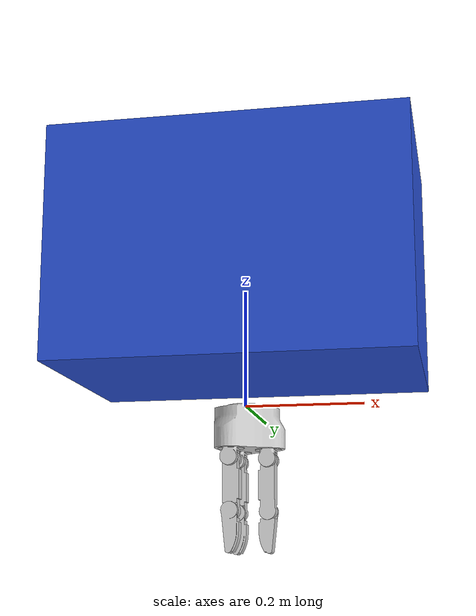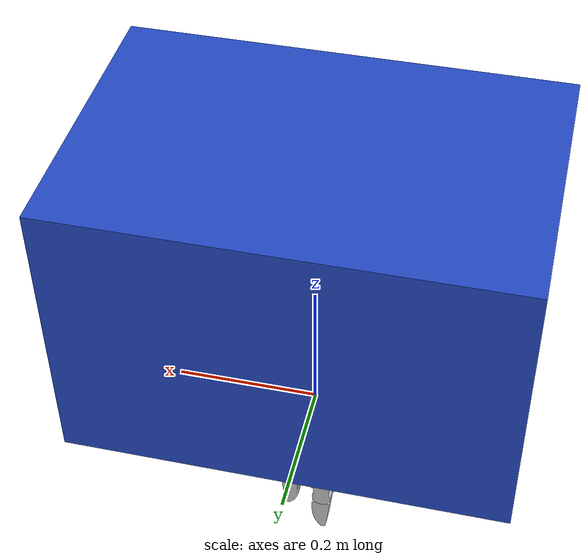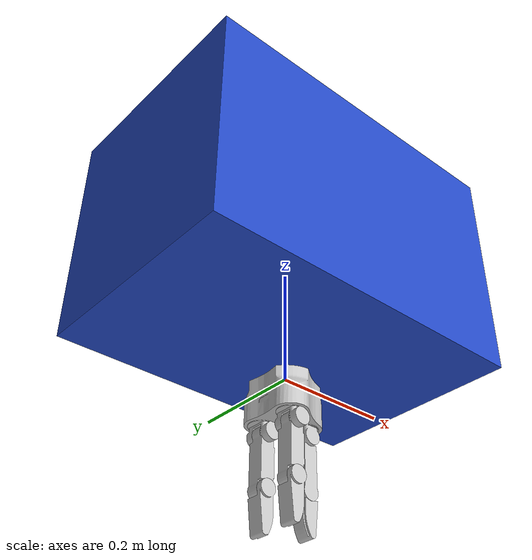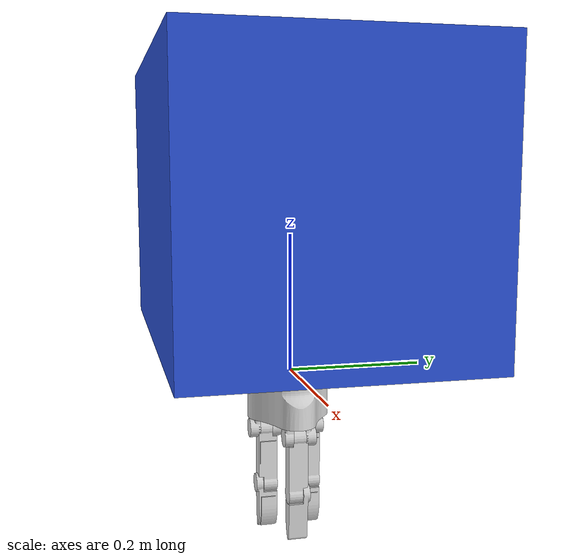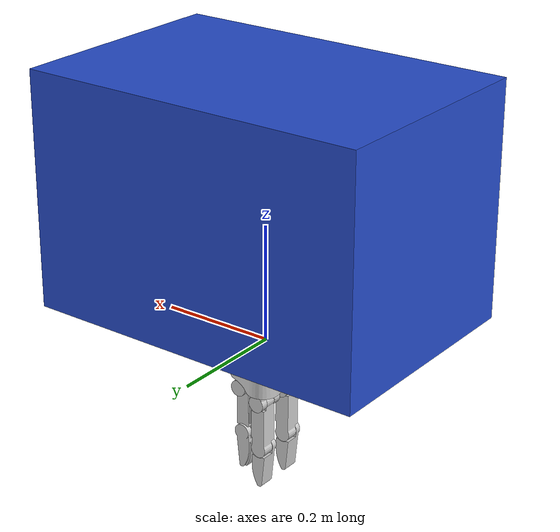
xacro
<?xml version="1.0"?>
<robot xmlns:xacro="http://www.ros.org/wiki/xacro"
       name="sdh" >

  <!-- The following included files set up definitions of parts of the robot body -->
  <!-- cob sdh-->
  <include filename="$(find schunk_description)/urdf/sdh/sdh.urdf.xacro" />

  <!-- foot for arm-->
  <link name="dummy_link">
          <inertial>
             <origin xyz="0 0 -10" rpy="0 0 0"/>
             <mass value="1000.0"/>
             <inertia ixx="100.0"  ixy="0"  ixz="0" iyy="100.0" iyz="0" izz="100.0" />
          </inertial>

          <visual>
             <origin xyz="0 0 0.25" rpy="0 0 0" />
             <geometry>
                    <box size="0.6 0.4 0.4"/>
                    <!--cylinder radius="0.1" length="0.5"/-->
             </geometry>
             <material name="Blue" />
          </visual>

          <collision>
             <origin xyz="0 0 0.25" rpy="0 0 0" />
             <geometry>
                    <box size="0.6 0.4 0.4"/>
                    <!--cylinder radius="0.1" length="0.5"/-->
             </geometry>
          </collision>
  </link>

  <!-- sdh -->
  <xacro:schunk_sdh name="sdh" parent="dummy_link">
    <origin xyz="0 0 0" rpy="0 3.1415926 0" />
  </xacro:schunk_sdh>

</robot>

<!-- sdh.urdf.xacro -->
<robot xmlns:xacro="http://www.ros.org/wiki/xacro">

  <xacro:include filename="$(find schunk_description)/urdf/sdh/sdh.gazebo.xacro" />
  <xacro:include filename="$(find schunk_description)/urdf/sdh/sdh.transmission.xacro" />

  <xacro:macro name="schunk_sdh" params="parent name *origin">

    <!-- joint between arm_7_link and sdh_palm_link -->
    <joint name="${name}_palm_joint" type="fixed" >
      <insert_block name="origin" />
      <parent link="${parent}" />
      <child link="${name}_palm_link" />
    </joint>

    <link name="${name}_palm_link">
      <inertial>
        <origin xyz="0 0 0" rpy="0 0 0"/>
        <mass value="1"/>
        <inertia ixx="0.01" ixy="0" ixz="0" iyy="0.01" iyz="0" izz="0.01" />
      </inertial>

      <visual>
        <origin xyz="0 0 0" rpy="0 0 0" />
        <geometry>
          <mesh filename="package://schunk_description/meshes/sdh/palm.stl" />
        </geometry>
        <material name="Schunk/LightGrey" />
      </visual>

      <collision>
        <origin xyz="0 0 0" rpy="0 0 0" />
        <geometry>
          <mesh filename="package://schunk_description/meshes/sdh/palm.stl"/>
        </geometry>
      </collision>
    </link>

    <!-- grasp link -->
    <joint name="${name}_grasp_joint" type="fixed" >
      <origin xyz="0 0 0.15" rpy="0 0 0"/>
      <parent link="${name}_palm_link" />
      <child link="${name}_grasp_link" />
    </joint>

    <link name="${name}_grasp_link"/>

    <!-- tip link -->
    <joint name="${name}_tip_joint" type="fixed" >
      <origin xyz="0 0 0.22" rpy="0 0 0"/>
      <parent link="${name}_palm_link" />
      <child link="${name}_tip_link" />
    </joint>

    <link name="${name}_tip_link"/>

    <!-- finger1 -->
    <!-- joint between sdh_palm_link and sdh_finger_11_link -->
    <joint name="${name}_knuckle_joint" type="revolute">
      <origin xyz="0.01905 0.033 0.0745" rpy="0 0 3.14159265" />
      <parent link="${name}_palm_link"/>
      <child link="${name}_finger_11_link"/>
      <axis xyz="0 0 1" />
      <dynamics damping="1" />
      <limit effort="100" lower="0" upper="1.570796327" velocity="5"/>
    </joint>

    <link name="${name}_finger_11_link">
      <inertial>
        <origin xyz="0 0 0" rpy="0 0 0"/>
        <mass value="0.1"/>
        <inertia ixx="0.01" ixy="0" ixz="0" iyy="0.01" iyz="0" izz="0.01" />
      </inertial>

      <visual>
        <origin xyz="0 0 0" rpy="0 0 0" />
        <geometry>
          <mesh filename="package://schunk_description/meshes/sdh/knuckle.stl" />
        </geometry>
        <material name="Schunk/LightGrey" />
      </visual>

      <collision>
        <origin xyz="0 0 0" rpy="0 0 0" />
        <geometry>
        <mesh filename="package://schunk_description/meshes/sdh/knuckle.stl"/>
        </geometry>
      </collision>
    </link>

    <!-- joint between sdh_finger_11_link and sdh_finger_12_link -->
    <joint name="${name}_finger_12_joint" type="revolute">
      <origin xyz="0 0 0.0165" rpy="0 0 0" />
      <parent link="${name}_finger_11_link"/>
      <child link="${name}_finger_12_link"/>
      <axis xyz="0 1 0" />
      <dynamics damping="1" />
      <limit effort="100" lower="-1.570796327" upper="1.570796327" velocity="5"/>
    </joint>

    <link name="${name}_finger_12_link">
      <inertial>
        <origin xyz="0 0 0" rpy="0 0 0"/>
        <mass value="0.1"/>
        <inertia ixx="0.01" ixy="0" ixz="0" iyy="0.01" iyz="0" izz="0.01" />
      </inertial>

      <visual>
        <origin xyz="0 0 0" rpy="0 0 0" />
        <geometry>
          <mesh filename="package://schunk_description/meshes/sdh/finger.stl" />
        </geometry>
      <material name="Schunk/LightGrey" />
      </visual>

      <collision>
        <origin xyz="0 0 0" rpy="0 0 0" />
        <geometry>
          <mesh filename="package://schunk_description/meshes/sdh/finger.stl"/>
        </geometry>
      </collision>
    </link>

    <!-- joint between sdh_finger_12_link and sdh_finger_13_link -->
    <joint name="${name}_finger_13_joint" type="revolute">

      <origin xyz="0 0 0.0865" rpy="0 0 0" />
      <parent link="${name}_finger_12_link"/>
      <child link="${name}_finger_13_link"/>
      <axis xyz="0 1 0" />
      <dynamics damping="1" />
      <limit effort="100" lower="-1.570796327" upper="1.570796327" velocity="5"/>
    </joint>

    <link name="${name}_finger_13_link">
      <inertial>
      <origin xyz="0 0 0" rpy="0 0 0"/>
        <mass value="0.1"/>
        <inertia ixx="0.01" ixy="0" ixz="0" iyy="0.01" iyz="0" izz="0.01" />
      </inertial>

      <visual>
        <origin xyz="0 0 0" rpy="0 0 0" />
        <geometry>
          <mesh filename="package://schunk_description/meshes/sdh/finger_tip.stl" />
        </geometry>
        <material name="Schunk/LightGrey" />
      </visual>

      <collision>
        <origin xyz="0 0 0" rpy="0 0 0" />
        <geometry>
          <mesh filename="package://schunk_description/meshes/sdh/finger_tip.stl"/>
        </geometry>
      </collision>
    </link>

    <!-- finger2 -->
    <!-- joint between sdh_palm_link and sdh_finger_21_link -->
    <joint name="${name}_finger_21_joint" type="revolute">
      <mimic joint="${name}_knuckle_joint" multiplier="1" offset="0"/>
      <origin xyz="0.01905 -0.033 0.0745" rpy="0 0 3.14159265" />
      <parent link="${name}_palm_link"/>
      <child link="${name}_finger_21_link"/>
      <axis xyz="0 0 -1" />
      <dynamics damping="1" />
      <limit effort="100" lower="0" upper="1.570796327" velocity="5"/>
    </joint>

    <link name="${name}_finger_21_link">
      <inertial>
        <origin xyz="0 0 0" rpy="0 0 0"/>
        <mass value="0.1"/>
        <inertia ixx="0.01" ixy="0" ixz="0" iyy="0.01" iyz="0" izz="0.01" />
      </inertial>

      <visual>
        <origin xyz="0 0 0" rpy="0 0 0" />
        <geometry>
          <mesh filename="package://schunk_description/meshes/sdh/knuckle.stl" />
        </geometry>
        <material name="Schunk/LightGrey" />
      </visual>

      <collision>
        <origin xyz="0 0 0" rpy="0 0 0" />
        <geometry>
          <mesh filename="package://schunk_description/meshes/sdh/knuckle.stl"/>
        </geometry>
      </collision>
    </link>

    <!-- joint between sdh_finger_21_link and sdh_finger_22_link -->
    <joint name="${name}_finger_22_joint" type="revolute">
      <origin xyz="0 0 0.0165" rpy="0 0 0" />
      <parent link="${name}_finger_21_link"/>
      <child link="${name}_finger_22_link"/>
      <axis xyz="0 1 0" />
      <dynamics damping="1" />
      <limit effort="100" lower="-1.570796327" upper="1.570796327" velocity="5"/>
    </joint>

    <link name="${name}_finger_22_link">
      <inertial>
        <origin xyz="0 0 0" rpy="0 0 0"/>
        <mass value="0.1"/>
        <inertia ixx="0.01" ixy="0" ixz="0" iyy="0.01" iyz="0" izz="0.01" />
      </inertial>

      <visual>
        <origin xyz="0 0 0" rpy="0 0 0" />
        <geometry>
          <mesh filename="package://schunk_description/meshes/sdh/finger.stl" />
        </geometry>
        <material name="Schunk/LightGrey" />
      </visual>

      <collision>
        <origin xyz="0 0 0" rpy="0 0 0" />
        <geometry>
          <mesh filename="package://schunk_description/meshes/sdh/finger.stl"/>
        </geometry>
      </collision>
    </link>

    <!-- joint between sdh_finger_22_link and sdh_finger_23_link -->
    <joint name="${name}_finger_23_joint" type="revolute">
      <origin xyz="0 0 0.0865" rpy="0 0 0" />
      <parent link="${name}_finger_22_link"/>
      <child link="${name}_finger_23_link"/>
      <axis xyz="0 1 0" />
      <dynamics damping="1" />
      <limit effort="100" lower="-1.570796327" upper="1.570796327" velocity="5"/>
    </joint>

    <link name="${name}_finger_23_link">
      <inertial>
        <origin xyz="0 0 0" rpy="0 0 0"/>
        <mass value="0.1"/>
        <inertia ixx="0.01" ixy="0" ixz="0" iyy="0.01" iyz="0" izz="0.01" />
      </inertial>

      <visual>
        <origin xyz="0 0 0" rpy="0 0 0" />
        <geometry>
          <mesh filename="package://schunk_description/meshes/sdh/finger_tip.stl" />
        </geometry>
        <material name="Schunk/LightGrey" />
      </visual>

      <collision>
        <origin xyz="0 0 0" rpy="0 0 0" />
        <geometry>
          <mesh filename="package://schunk_description/meshes/sdh/finger_tip.stl"/>
        </geometry>
      </collision>
    </link>

    <!-- thumb -->
    <!-- joint between sdh_palm_link and sdh_thumb_1_link -->
    <joint name="${name}_thumb_1_joint" type="fixed">
      <origin xyz="-0.03811 0 0.0745 " rpy="0 0 0" />
      <parent link="${name}_palm_link"/>
      <child link="${name}_thumb_1_link"/>
    </joint>

    <link name="${name}_thumb_1_link">
      <inertial>
        <origin xyz="0 0 0" rpy="0 0 0"/>
        <mass value="0.1"/>
        <inertia ixx="0.01" ixy="0" ixz="0" iyy="0.01" iyz="0" izz="0.01" />
      </inertial>

      <visual>
        <origin xyz="0 0 0" rpy="0 0 0" />
        <geometry>
          <mesh filename="package://schunk_description/meshes/sdh/knuckle.stl" />
        </geometry>
        <material name="Schunk/LightGrey" />
      </visual>

      <collision>
        <origin xyz="0 0 0" rpy="0 0 0" />
        <geometry>
          <mesh filename="package://schunk_description/meshes/sdh/knuckle.stl"/>
        </geometry>
      </collision>
    </link>

    <!-- joint between sdh_thumb_1_link and shd_thumb_2_link -->
    <joint name="${name}_thumb_2_joint" type="revolute">
    <origin xyz="0 0 0.0165" rpy="0 0 0" />
    <parent link="${name}_thumb_1_link"/>
    <child link="${name}_thumb_2_link"/>
    <axis xyz="0 1 0" />
    <dynamics damping="1" />
    <limit effort="100" lower="-1.570796327" upper="1.570796327" velocity="5"/>
    </joint>

    <link name="${name}_thumb_2_link">
      <inertial>
        <origin xyz="0 0 0" rpy="0 0 0"/>
        <mass value="0.1"/>
        <inertia ixx="0.01" ixy="0" ixz="0" iyy="0.01" iyz="0" izz="0.01" />
      </inertial>

      <visual>
        <origin xyz="0 0 0" rpy="0 0 0" />
        <geometry>
          <mesh filename="package://schunk_description/meshes/sdh/finger.stl" />
        </geometry>
        <material name="Schunk/LightGrey" />
      </visual>

      <collision>
        <origin xyz="0 0 0" rpy="0 0 0" />
        <geometry>
          <mesh filename="package://schunk_description/meshes/sdh/finger.stl"/>
        </geometry>
      </collision>
    </link>

    <!-- joint between sdh_thumb_2_link and sdh_thumb_3_link -->
    <joint name="${name}_thumb_3_joint" type="revolute">
      <origin xyz="0 0 0.0865" rpy="0 0 0" />
      <parent link="${name}_thumb_2_link"/>
      <child link="${name}_thumb_3_link"/>
      <axis xyz="0 1 0" />
      <dynamics damping="1" />
      <limit effort="100" lower="-1.570796327" upper="1.570796327" velocity="5"/>
    </joint>

    <link name="${name}_thumb_3_link">
      <inertial>
        <origin xyz="0 0 0" rpy="0 0 0"/>
        <mass value="0.1"/>
        <inertia ixx="0.01" ixy="0" ixz="0" iyy="0.01" iyz="0" izz="0.01" />
      </inertial>

      <visual>
        <origin xyz="0 0 0" rpy="0 0 0" />
        <geometry>
          <mesh filename="package://schunk_description/meshes/sdh/finger_tip.stl" />
        </geometry>
        <material name="Schunk/LightGrey" />
      </visual>

      <collision>
        <origin xyz="0 0 0" rpy="0 0 0" />
        <geometry>
          <mesh filename="package://schunk_description/meshes/sdh/finger_tip.stl"/>
        </geometry>
      </collision>
    </link>

    <!-- extensions -->
    <xacro:schunk_sdh_gazebo name="${name}" />
    <xacro:schunk_sdh_transmission name="${name}" />

  </xacro:macro>

</robot>
